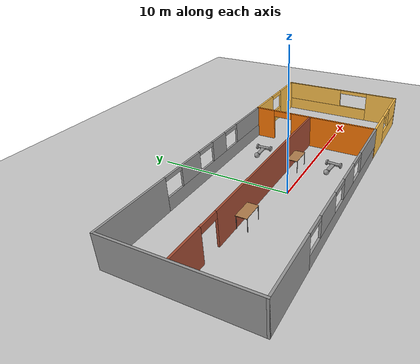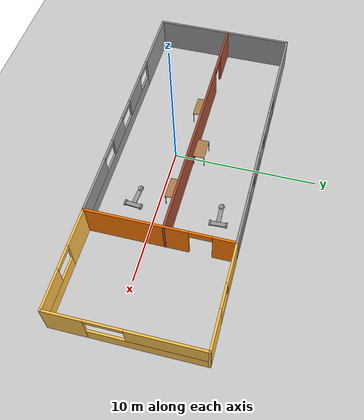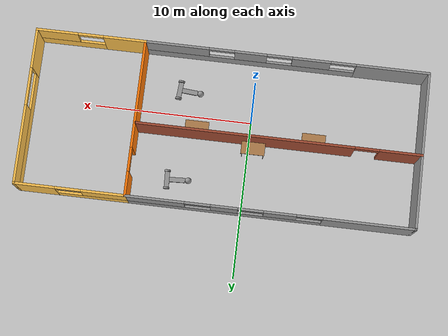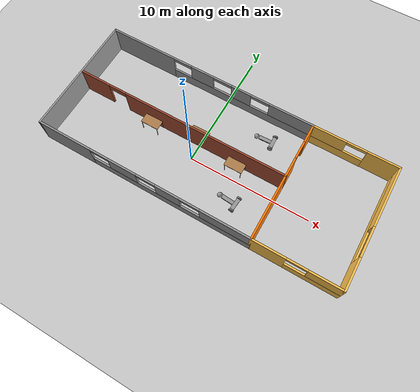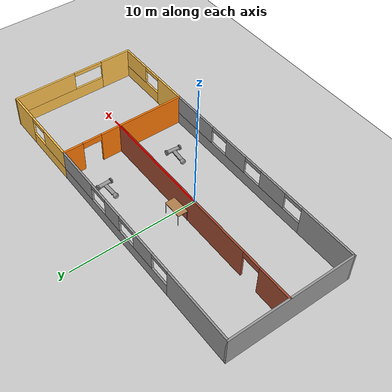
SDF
<sdf version="1.6">
 <world name="default">
  <plugin name="welcome_message" filename="libwelcome_message.so"/>
  <light name="sun" type="directional">
   <pose>0 0 10 0 -0 0</pose>
   <diffuse>0.8 0.8 0.8 1</diffuse>
   <specular>0.2 0.2 0.2 1</specular>
   <attenuation>
    <range>1000</range>
    <constant>0.9</constant>
    <linear>0.01</linear>
    <quadratic>0.001</quadratic>
   </attenuation>
   <direction>-0.5 0.1 -0.9</direction>
  </light>
  <model name="ground_plane">
   <static>1</static>
   <link name="link">
    <collision name="collision">
     <geometry><plane><normal>0 0 1</normal><size>100 100</size></plane></geometry>
     <surface><friction><ode><mu>100</mu><mu2>50</mu2></ode></friction></surface>
    </collision>
    <visual name="visual">
     <cast_shadows>0</cast_shadows>
     <geometry><plane><normal>0 0 1</normal><size>100 100</size></plane></geometry>
     <material>
      <script><uri>file://media/materials/scripts/gazebo.material</uri><name>Gazebo/Grey</name></script>
     </material>
    </visual>
   </link>
  </model>
  <gravity>0 0 -9.8</gravity>
  <magnetic_field>6e-06 2.3e-05 -4.2e-05</magnetic_field>
  <atmosphere type="adiabatic"/>
  <physics name="default_physics" default="0" type="ode">
   <max_step_size>0.001</max_step_size>
   <real_time_factor>1</real_time_factor>
   <real_time_update_rate>1000</real_time_update_rate>
  </physics>
  <scene><ambient>0.4 0.4 0.4 1</ambient><background>0.7 0.7 0.7 1</background><shadows>1</shadows></scene>
  <spherical_coordinates>
   <surface_model>EARTH_WGS84</surface_model>
   <latitude_deg>0</latitude_deg>
   <longitude_deg>0</longitude_deg>
   <elevation>0</elevation>
   <heading_deg>0</heading_deg>
  </spherical_coordinates>
  <model name="model">
   <pose>1.6444 1.00262 0 0 -0 0</pose>
   <link name="Wall_14">
    <collision name="Wall_14_Collision">
     <geometry><box><size>10 0.15 2.5</size></box></geometry>
     <pose>0 0 1.25 0 -0 0</pose>
    </collision>
    <visual name="Wall_14_Visual">
     <pose>0 0 1.25 0 -0 0</pose>
     <geometry><box><size>10 0.15 2.5</size></box></geometry>
     <material>
      <script><uri>file://media/materials/scripts/gazebo.material</uri><name>Gazebo/Grey</name></script>
      <ambient>1 1 1 1</ambient>
     </material>
     <meta><layer>0</layer></meta>
    </visual>
    <pose>-12.35 0 0 0 -0 1.5708</pose>
   </link>
   <link name="Wall_2">
    <pose>-3.425 -4.925 0 0 -0 0</pose>
    <visual name="Wall_2_Visual_0">
     <pose>-6.67972 0 1.25 0 -0 0</pose>
     <geometry><box><size>4.64056 0.15 2.5</size></box></geometry>
     <material>
      <script><uri>file://media/materials/scripts/gazebo.material</uri><name>Gazebo/Grey</name></script>
      <ambient>1 1 1 1</ambient>
     </material>
     <meta><layer>0</layer></meta>
    </visual>
    <collision name="Wall_2_Collision_0">
     <geometry><box><size>4.64056 0.15 2.5</size></box></geometry>
     <pose>-6.67972 0 1.25 0 -0 0</pose>
    </collision>
    <visual name="Wall_2_Visual_1">
     <pose>2.32028 0 0.5 0 -0 0</pose>
     <geometry><box><size>13.3594 0.15 1</size></box></geometry>
     <material>
      <script><uri>file://media/materials/scripts/gazebo.material</uri><name>Gazebo/Grey</name></script>
      <ambient>1 1 1 1</ambient>
     </material>
     <meta><layer>0</layer></meta>
    </visual>
    <collision name="Wall_2_Collision_1">
     <geometry><box><size>13.3594 0.15 1</size></box></geometry>
     <pose>2.32028 0 0.5 0 -0 0</pose>
    </collision>
    <visual name="Wall_2_Visual_2">
     <pose>-1.55367 0 1.75 0 -0 0</pose>
     <geometry><box><size>2.41153 0.15 1.5</size></box></geometry>
     <material>
      <script><uri>file://media/materials/scripts/gazebo.material</uri><name>Gazebo/Grey</name></script>
      <ambient>1 1 1 1</ambient>
     </material>
     <meta><layer>0</layer></meta>
    </visual>
    <collision name="Wall_2_Collision_2">
     <geometry><box><size>2.41153 0.15 1.5</size></box></geometry>
     <pose>-1.55367 0 1.75 0 -0 0</pose>
    </collision>
    <visual name="Wall_2_Visual_3">
     <pose>2.27221 0 1.75 0 -0 0</pose>
     <geometry><box><size>2.04024 0.15 1.5</size></box></geometry>
     <material>
      <script><uri>file://media/materials/scripts/gazebo.material</uri><name>Gazebo/Grey</name></script>
      <ambient>1 1 1 1</ambient>
     </material>
     <meta><layer>0</layer></meta>
    </visual>
    <collision name="Wall_2_Collision_3">
     <geometry><box><size>2.04024 0.15 1.5</size></box></geometry>
     <pose>2.27221 0 1.75 0 -0 0</pose>
    </collision>
    <visual name="Wall_2_Visual_4">
     <pose>6.94616 0 1.75 0 -0 0</pose>
     <geometry><box><size>4.10767 0.15 1.5</size></box></geometry>
     <material>
      <script><uri>file://media/materials/scripts/gazebo.material</uri><name>Gazebo/Grey</name></script>
      <ambient>1 1 1 1</ambient>
     </material>
     <meta><layer>0</layer></meta>
    </visual>
    <collision name="Wall_2_Collision_4">
     <geometry><box><size>4.10767 0.15 1.5</size></box></geometry>
     <pose>6.94616 0 1.75 0 -0 0</pose>
    </collision>
    <visual name="Wall_2_Visual_5">
     <pose>-3.55944 0 2.35 0 -0 0</pose>
     <geometry><box><size>1.6 0.15 0.3</size></box></geometry>
     <material>
      <script><uri>file://media/materials/scripts/gazebo.material</uri><name>Gazebo/Grey</name></script>
      <ambient>1 1 1 1</ambient>
     </material>
     <meta><layer>0</layer></meta>
    </visual>
    <collision name="Wall_2_Collision_5">
     <geometry><box><size>1.6 0.15 0.3</size></box></geometry>
     <pose>-3.55944 0 2.35 0 -0 0</pose>
    </collision>
    <visual name="Wall_2_Visual_6">
     <pose>0.452091 0 2.35 0 -0 0</pose>
     <geometry><box><size>1.6 0.15 0.3</size></box></geometry>
     <material>
      <script><uri>file://media/materials/scripts/gazebo.material</uri><name>Gazebo/Grey</name></script>
      <ambient>1 1 1 1</ambient>
     </material>
     <meta><layer>0</layer></meta>
    </visual>
    <collision name="Wall_2_Collision_6">
     <geometry><box><size>1.6 0.15 0.3</size></box></geometry>
     <pose>0.452091 0 2.35 0 -0 0</pose>
    </collision>
    <visual name="Wall_2_Visual_7">
     <pose>4.09233 0 2.35 0 -0 0</pose>
     <geometry><box><size>1.6 0.15 0.3</size></box></geometry>
     <material>
      <script><uri>file://media/materials/scripts/gazebo.material</uri><name>Gazebo/Grey</name></script>
      <ambient>1 1 1 1</ambient>
     </material>
     <meta><layer>0</layer></meta>
    </visual>
    <collision name="Wall_2_Collision_7">
     <geometry><box><size>1.6 0.15 0.3</size></box></geometry>
     <pose>4.09233 0 2.35 0 -0 0</pose>
    </collision>
   </link>
   <link name="Wall_21">
    <pose>-3.425 4.925 0 0 -0 0</pose>
    <visual name="Wall_21_Visual_0">
     <pose>-6.12354 0 1.25 0 -0 0</pose>
     <geometry><box><size>5.75291 0.15 2.5</size></box></geometry>
     <material>
      <script><uri>file://media/materials/scripts/gazebo.material</uri><name>Gazebo/Grey</name></script>
      <ambient>1 1 1 1</ambient>
     </material>
     <meta><layer>0</layer></meta>
    </visual>
    <collision name="Wall_21_Collision_0">
     <geometry><box><size>5.75291 0.15 2.5</size></box></geometry>
     <pose>-6.12354 0 1.25 0 -0 0</pose>
    </collision>
    <visual name="Wall_21_Visual_1">
     <pose>2.87646 0 0.5 0 -0 0</pose>
     <geometry><box><size>12.2471 0.15 1</size></box></geometry>
     <material>
      <script><uri>file://media/materials/scripts/gazebo.material</uri><name>Gazebo/Grey</name></script>
      <ambient>1 1 1 1</ambient>
     </material>
     <meta><layer>0</layer></meta>
    </visual>
    <collision name="Wall_21_Collision_1">
     <geometry><box><size>12.2471 0.15 1</size></box></geometry>
     <pose>2.87646 0 0.5 0 -0 0</pose>
    </collision>
    <visual name="Wall_21_Visual_2">
     <pose>-0.636863 0 1.75 0 -0 0</pose>
     <geometry><box><size>2.02044 0.15 1.5</size></box></geometry>
     <material>
      <script><uri>file://media/materials/scripts/gazebo.material</uri><name>Gazebo/Grey</name></script>
      <ambient>1 1 1 1</ambient>
     </material>
     <meta><layer>0</layer></meta>
    </visual>
    <collision name="Wall_21_Collision_2">
     <geometry><box><size>2.02044 0.15 1.5</size></box></geometry>
     <pose>-0.636863 0 1.75 0 -0 0</pose>
    </collision>
    <visual name="Wall_21_Visual_3">
     <pose>2.81953 0 1.75 0 -0 0</pose>
     <geometry><box><size>1.69234 0.15 1.5</size></box></geometry>
     <material>
      <script><uri>file://media/materials/scripts/gazebo.material</uri><name>Gazebo/Grey</name></script>
      <ambient>1 1 1 1</ambient>
     </material>
     <meta><layer>0</layer></meta>
    </visual>
    <collision name="Wall_21_Collision_3">
     <geometry><box><size>1.69234 0.15 1.5</size></box></geometry>
     <pose>2.81953 0 1.75 0 -0 0</pose>
    </collision>
    <visual name="Wall_21_Visual_4">
     <pose>7.13285 0 1.75 0 -0 0</pose>
     <geometry><box><size>3.7343 0.15 1.5</size></box></geometry>
     <material>
      <script><uri>file://media/materials/scripts/gazebo.material</uri><name>Gazebo/Grey</name></script>
      <ambient>1 1 1 1</ambient>
     </material>
     <meta><layer>0</layer></meta>
    </visual>
    <collision name="Wall_21_Collision_4">
     <geometry><box><size>3.7343 0.15 1.5</size></box></geometry>
     <pose>7.13285 0 1.75 0 -0 0</pose>
    </collision>
    <visual name="Wall_21_Visual_5">
     <pose>-2.44708 0 2.35 0 -0 0</pose>
     <geometry><box><size>1.6 0.15 0.3</size></box></geometry>
     <material>
      <script><uri>file://media/materials/scripts/gazebo.material</uri><name>Gazebo/Grey</name></script>
      <ambient>1 1 1 1</ambient>
     </material>
     <meta><layer>0</layer></meta>
    </visual>
    <collision name="Wall_21_Collision_5">
     <geometry><box><size>1.6 0.15 0.3</size></box></geometry>
     <pose>-2.44708 0 2.35 0 -0 0</pose>
    </collision>
    <visual name="Wall_21_Visual_6">
     <pose>1.17336 0 2.35 0 -0 0</pose>
     <geometry><box><size>1.6 0.15 0.3</size></box></geometry>
     <material>
      <script><uri>file://media/materials/scripts/gazebo.material</uri><name>Gazebo/Grey</name></script>
      <ambient>1 1 1 1</ambient>
     </material>
     <meta><layer>0</layer></meta>
    </visual>
    <collision name="Wall_21_Collision_6">
     <geometry><box><size>1.6 0.15 0.3</size></box></geometry>
     <pose>1.17336 0 2.35 0 -0 0</pose>
    </collision>
    <visual name="Wall_21_Visual_7">
     <pose>4.4657 0 2.35 0 -0 0</pose>
     <geometry><box><size>1.6 0.15 0.3</size></box></geometry>
     <material>
      <script><uri>file://media/materials/scripts/gazebo.material</uri><name>Gazebo/Grey</name></script>
      <ambient>1 1 1 1</ambient>
     </material>
     <meta><layer>0</layer></meta>
    </visual>
    <collision name="Wall_21_Collision_7">
     <geometry><box><size>1.6 0.15 0.3</size></box></geometry>
     <pose>4.4657 0 2.35 0 -0 0</pose>
    </collision>
   </link>
   <link name="Wall_23">
    <pose>5.5 0 0 0 -0 -1.5708</pose>
    <visual name="Wall_23_Visual_0">
     <pose>-4.19626 0 1.25 0 -0 0</pose>
     <geometry><box><size>1.60748 0.15 2.5</size></box></geometry>
     <material>
      <script><uri>file://media/materials/scripts/gazebo.material</uri><name>Gazebo/Grey</name></script>
      <ambient>0.996078 0.47451 0.0196078 1</ambient>
     </material>
     <meta><layer>0</layer></meta>
    </visual>
    <collision name="Wall_23_Collision_0">
     <geometry><box><size>1.60748 0.15 2.5</size></box></geometry>
     <pose>-4.19626 0 1.25 0 -0 0</pose>
    </collision>
    <visual name="Wall_23_Visual_1">
     <pose>1.55374 0 1.25 0 -0 0</pose>
     <geometry><box><size>6.89252 0.15 2.5</size></box></geometry>
     <material>
      <script><uri>file://media/materials/scripts/gazebo.material</uri><name>Gazebo/Grey</name></script>
      <ambient>0.996078 0.47451 0.0196078 1</ambient>
     </material>
     <meta><layer>0</layer></meta>
    </visual>
    <collision name="Wall_23_Collision_1">
     <geometry><box><size>6.89252 0.15 2.5</size></box></geometry>
     <pose>1.55374 0 1.25 0 -0 0</pose>
    </collision>
    <visual name="Wall_23_Visual_2">
     <pose>-2.64252 0 2.25 0 -0 0</pose>
     <geometry><box><size>1.5 0.15 0.5</size></box></geometry>
     <material>
      <script><uri>file://media/materials/scripts/gazebo.material</uri><name>Gazebo/Grey</name></script>
      <ambient>0.996078 0.47451 0.0196078 1</ambient>
     </material>
     <meta><layer>0</layer></meta>
    </visual>
    <collision name="Wall_23_Collision_2">
     <geometry><box><size>1.5 0.15 0.5</size></box></geometry>
     <pose>-2.64252 0 2.25 0 -0 0</pose>
    </collision>
   </link>
   <link name="Wall_24">
    <pose>8.925 -4.925 0 0 -0 0</pose>
    <visual name="Wall_24_Visual_0">
     <pose>-2.13386 0 1.25 0 -0 0</pose>
     <geometry><box><size>2.73228 0.15 2.5</size></box></geometry>
     <material>
      <script><uri>file://media/materials/scripts/gazebo.material</uri><name>Gazebo/Grey</name></script>
      <ambient>1 0.764706 0.305882 1</ambient>
     </material>
     <meta><layer>0</layer></meta>
    </visual>
    <collision name="Wall_24_Collision_0">
     <geometry><box><size>2.73228 0.15 2.5</size></box></geometry>
     <pose>-2.13386 0 1.25 0 -0 0</pose>
    </collision>
    <visual name="Wall_24_Visual_1">
     <pose>1.36614 0 0.5 0 -0 0</pose>
     <geometry><box><size>4.26772 0.15 1</size></box></geometry>
     <material>
      <script><uri>file://media/materials/scripts/gazebo.material</uri><name>Gazebo/Grey</name></script>
      <ambient>1 0.764706 0.305882 1</ambient>
     </material>
     <meta><layer>0</layer></meta>
    </visual>
    <collision name="Wall_24_Collision_1">
     <geometry><box><size>4.26772 0.15 1</size></box></geometry>
     <pose>1.36614 0 0.5 0 -0 0</pose>
    </collision>
    <visual name="Wall_24_Visual_2">
     <pose>2.16614 0 1.75 0 -0 0</pose>
     <geometry><box><size>2.66772 0.15 1.5</size></box></geometry>
     <material>
      <script><uri>file://media/materials/scripts/gazebo.material</uri><name>Gazebo/Grey</name></script>
      <ambient>1 0.764706 0.305882 1</ambient>
     </material>
     <meta><layer>0</layer></meta>
    </visual>
    <collision name="Wall_24_Collision_2">
     <geometry><box><size>2.66772 0.15 1.5</size></box></geometry>
     <pose>2.16614 0 1.75 0 -0 0</pose>
    </collision>
    <visual name="Wall_24_Visual_3">
     <pose>0.032279 0 2.35 0 -0 0</pose>
     <geometry><box><size>1.6 0.15 0.3</size></box></geometry>
     <material>
      <script><uri>file://media/materials/scripts/gazebo.material</uri><name>Gazebo/Grey</name></script>
      <ambient>1 0.764706 0.305882 1</ambient>
     </material>
     <meta><layer>0</layer></meta>
    </visual>
    <collision name="Wall_24_Collision_3">
     <geometry><box><size>1.6 0.15 0.3</size></box></geometry>
     <pose>0.032279 0 2.35 0 -0 0</pose>
    </collision>
   </link>
   <link name="Wall_25">
    <pose>12.35 0 0 0 -0 1.5708</pose>
    <visual name="Wall_25_Visual_0">
     <pose>-3.70668 0 1.25 0 -0 0</pose>
     <geometry><box><size>2.58664 0.15 2.5</size></box></geometry>
     <material>
      <script><uri>file://media/materials/scripts/gazebo.material</uri><name>Gazebo/Grey</name></script>
      <ambient>1 0.764706 0.305882 1</ambient>
     </material>
     <meta><layer>0</layer></meta>
    </visual>
    <collision name="Wall_25_Collision_0">
     <geometry><box><size>2.58664 0.15 2.5</size></box></geometry>
     <pose>-3.70668 0 1.25 0 -0 0</pose>
    </collision>
    <visual name="Wall_25_Visual_1">
     <pose>1.29332 0 0.5 0 -0 0</pose>
     <geometry><box><size>7.41336 0.15 1</size></box></geometry>
     <material>
      <script><uri>file://media/materials/scripts/gazebo.material</uri><name>Gazebo/Grey</name></script>
      <ambient>1 0.764706 0.305882 1</ambient>
     </material>
     <meta><layer>0</layer></meta>
    </visual>
    <collision name="Wall_25_Collision_1">
     <geometry><box><size>7.41336 0.15 1</size></box></geometry>
     <pose>1.29332 0 0.5 0 -0 0</pose>
    </collision>
    <visual name="Wall_25_Visual_2">
     <pose>2.49332 0 1.75 0 -0 0</pose>
     <geometry><box><size>5.01336 0.15 1.5</size></box></geometry>
     <material>
      <script><uri>file://media/materials/scripts/gazebo.material</uri><name>Gazebo/Grey</name></script>
      <ambient>1 0.764706 0.305882 1</ambient>
     </material>
     <meta><layer>0</layer></meta>
    </visual>
    <collision name="Wall_25_Collision_2">
     <geometry><box><size>5.01336 0.15 1.5</size></box></geometry>
     <pose>2.49332 0 1.75 0 -0 0</pose>
    </collision>
    <visual name="Wall_25_Visual_3">
     <pose>-1.21336 0 2.35 0 -0 0</pose>
     <geometry><box><size>2.4 0.15 0.3</size></box></geometry>
     <material>
      <script><uri>file://media/materials/scripts/gazebo.material</uri><name>Gazebo/Grey</name></script>
      <ambient>1 0.764706 0.305882 1</ambient>
     </material>
     <meta><layer>0</layer></meta>
    </visual>
    <collision name="Wall_25_Collision_3">
     <geometry><box><size>2.4 0.15 0.3</size></box></geometry>
     <pose>-1.21336 0 2.35 0 -0 0</pose>
    </collision>
   </link>
   <link name="Wall_26">
    <pose>8.925 4.925 0 0 -0 3.14159</pose>
    <visual name="Wall_26_Visual_0">
     <pose>-2.19673 0 1.25 0 -0 0</pose>
     <geometry><box><size>2.60654 0.15 2.5</size></box></geometry>
     <material>
      <script><uri>file://media/materials/scripts/gazebo.material</uri><name>Gazebo/Grey</name></script>
      <ambient>1 0.764706 0.305882 1</ambient>
     </material>
     <meta><layer>0</layer></meta>
    </visual>
    <collision name="Wall_26_Collision_0">
     <geometry><box><size>2.60654 0.15 2.5</size></box></geometry>
     <pose>-2.19673 0 1.25 0 -0 0</pose>
    </collision>
    <visual name="Wall_26_Visual_1">
     <pose>1.30327 0 0.5 0 -0 0</pose>
     <geometry><box><size>4.39346 0.15 1</size></box></geometry>
     <material>
      <script><uri>file://media/materials/scripts/gazebo.material</uri><name>Gazebo/Grey</name></script>
      <ambient>1 0.764706 0.305882 1</ambient>
     </material>
     <meta><layer>0</layer></meta>
    </visual>
    <collision name="Wall_26_Collision_1">
     <geometry><box><size>4.39346 0.15 1</size></box></geometry>
     <pose>1.30327 0 0.5 0 -0 0</pose>
    </collision>
    <visual name="Wall_26_Visual_2">
     <pose>2.10327 0 1.75 0 -0 0</pose>
     <geometry><box><size>2.79346 0.15 1.5</size></box></geometry>
     <material>
      <script><uri>file://media/materials/scripts/gazebo.material</uri><name>Gazebo/Grey</name></script>
      <ambient>1 0.764706 0.305882 1</ambient>
     </material>
     <meta><layer>0</layer></meta>
    </visual>
    <collision name="Wall_26_Collision_2">
     <geometry><box><size>2.79346 0.15 1.5</size></box></geometry>
     <pose>2.10327 0 1.75 0 -0 0</pose>
    </collision>
    <visual name="Wall_26_Visual_3">
     <pose>-0.09346 0 2.35 0 -0 0</pose>
     <geometry><box><size>1.6 0.15 0.3</size></box></geometry>
     <material>
      <script><uri>file://media/materials/scripts/gazebo.material</uri><name>Gazebo/Grey</name></script>
      <ambient>1 0.764706 0.305882 1</ambient>
     </material>
     <meta><layer>0</layer></meta>
    </visual>
    <collision name="Wall_26_Collision_3">
     <geometry><box><size>1.6 0.15 0.3</size></box></geometry>
     <pose>-0.09346 0 2.35 0 -0 0</pose>
    </collision>
   </link>
   <link name="Wall_28">
    <pose>-3.41699 0.307878 0 0 -0 0</pose>
    <visual name="Wall_28_Visual_0">
     <pose>-7.64433 0 1.25 0 -0 0</pose>
     <geometry><box><size>2.71133 0.15 2.5</size></box></geometry>
     <material>
      <script><uri>file://media/materials/scripts/gazebo.material</uri><name>Gazebo/Bricks</name></script>
      <ambient>0.996078 0.47451 0.0196078 1</ambient>
     </material>
     <meta><layer>0</layer></meta>
    </visual>
    <collision name="Wall_28_Collision_0">
     <geometry><box><size>2.71133 0.15 2.5</size></box></geometry>
     <pose>-7.64433 0 1.25 0 -0 0</pose>
    </collision>
    <visual name="Wall_28_Visual_1">
     <pose>2.10567 0 1.25 0 -0 0</pose>
     <geometry><box><size>13.7887 0.15 2.5</size></box></geometry>
     <material>
      <script><uri>file://media/materials/scripts/gazebo.material</uri><name>Gazebo/Bricks</name></script>
      <ambient>0.996078 0.47451 0.0196078 1</ambient>
     </material>
     <meta><layer>0</layer></meta>
    </visual>
    <collision name="Wall_28_Collision_1">
     <geometry><box><size>13.7887 0.15 2.5</size></box></geometry>
     <pose>2.10567 0 1.25 0 -0 0</pose>
    </collision>
    <visual name="Wall_28_Visual_2">
     <pose>-5.53867 0 2.25 0 -0 0</pose>
     <geometry><box><size>1.5 0.15 0.5</size></box></geometry>
     <material>
      <script><uri>file://media/materials/scripts/gazebo.material</uri><name>Gazebo/Bricks</name></script>
      <ambient>0.996078 0.47451 0.0196078 1</ambient>
     </material>
     <meta><layer>0</layer></meta>
    </visual>
    <collision name="Wall_28_Collision_2">
     <geometry><box><size>1.5 0.15 0.5</size></box></geometry>
     <pose>-5.53867 0 2.25 0 -0 0</pose>
    </collision>
   </link>
   <static>1</static>
  </model>
  <model name="model_0">
   <link name="link_0">
    <inertial>
     <mass>1</mass>
     <inertia>
      <ixx>0.166667</ixx>
      <ixy>0</ixy>
      <ixz>0</ixz>
      <iyy>0.166667</iyy>
      <iyz>0</iyz>
      <izz>0.166667</izz>
     </inertia>
    </inertial>
    <pose>0.400009 0 0 0 -0 0</pose>
    <visual name="visual">
     <geometry><box><size>0.3 1 0.1</size></box></geometry>
     <material>
      <lighting>1</lighting>
      <script><uri>file://media/materials/scripts/gazebo.material</uri><name>Gazebo/Grey</name></script>
      <shader type="pixel"><normal_map>__default__</normal_map></shader>
      <ambient>0.3 0.3 0.3 1</ambient>
      <diffuse>0.7 0.7 0.7 1</diffuse>
      <specular>0.01 0.01 0.01 1</specular>
      <emissive>0 0 0 1</emissive>
     </material>
    </visual>
    <collision name="collision">
     <geometry><box><size>0.3 1 0.1</size></box></geometry>
     <surface>
      <friction>
       <ode><mu>1</mu><mu2>1</mu2><fdir1>0 0 0</fdir1><slip1>0</slip1><slip2>0</slip2></ode>
       <torsional>
        <coefficient>1</coefficient>
        <patch_radius>0</patch_radius>
        <surface_radius>0</surface_radius>
        <use_patch_radius>1</use_patch_radius>
        <ode><slip>0</slip></ode>
       </torsional>
      </friction>
      <bounce><restitution_coefficient>0</restitution_coefficient><threshold>1e+06</threshold></bounce>
      <contact>
       <collide_without_contact>0</collide_without_contact>
       <collide_without_contact_bitmask>1</collide_without_contact_bitmask>
       <collide_bitmask>1</collide_bitmask>
       <ode>
        <soft_cfm>0</soft_cfm>
        <soft_erp>0.2</soft_erp>
        <kp>1e+13</kp>
        <kd>1</kd>
        <max_vel>0.01</max_vel>
        <min_depth>0</min_depth>
       </ode>
       <bullet>
        <split_impulse>1</split_impulse>
        <split_impulse_penetration_threshold>-0.01</split_impulse_penetration_threshold>
        <soft_cfm>0</soft_cfm>
        <soft_erp>0.2</soft_erp>
        <kp>1e+13</kp>
        <kd>1</kd>
       </bullet>
      </contact>
     </surface>
    </collision>
   </link>
   <link name="link_1">
    <inertial>
     <mass>1</mass>
     <inertia><ixx>0.145833</ixx><ixy>0</ixy><ixz>0</ixz><iyy>0.145833</iyy><iyz>0</iyz><izz>0.125</izz></inertia>
    </inertial>
    <pose>0.400009 -0.550019 0 1.5707 -0 0</pose>
    <visual name="visual">
     <geometry><cylinder><radius>0.2</radius><length>0.1</length></cylinder></geometry>
     <material>
      <lighting>1</lighting>
      <script><uri>file://media/materials/scripts/gazebo.material</uri><name>Gazebo/Grey</name></script>
      <shader type="pixel"><normal_map>__default__</normal_map></shader>
      <ambient>0.3 0.3 0.3 1</ambient>
      <diffuse>0.7 0.7 0.7 1</diffuse>
      <specular>0.01 0.01 0.01 1</specular>
      <emissive>0 0 0 1</emissive>
     </material>
    </visual>
    <collision name="collision">
     <geometry><cylinder><radius>0.2</radius><length>0.1</length></cylinder></geometry>
     <surface>
      <friction>
       <ode><mu>1</mu><mu2>1</mu2><fdir1>0 0 0</fdir1><slip1>0</slip1><slip2>0</slip2></ode>
       <torsional>
        <coefficient>1</coefficient>
        <patch_radius>0</patch_radius>
        <surface_radius>0</surface_radius>
        <use_patch_radius>1</use_patch_radius>
        <ode><slip>0</slip></ode>
       </torsional>
      </friction>
      <bounce><restitution_coefficient>0</restitution_coefficient><threshold>1e+06</threshold></bounce>
      <contact>
       <collide_without_contact>0</collide_without_contact>
       <collide_without_contact_bitmask>1</collide_without_contact_bitmask>
       <collide_bitmask>1</collide_bitmask>
       <ode>
        <soft_cfm>0</soft_cfm>
        <soft_erp>0.2</soft_erp>
        <kp>1e+13</kp>
        <kd>1</kd>
        <max_vel>0.01</max_vel>
        <min_depth>0</min_depth>
       </ode>
       <bullet>
        <split_impulse>1</split_impulse>
        <split_impulse_penetration_threshold>-0.01</split_impulse_penetration_threshold>
        <soft_cfm>0</soft_cfm>
        <soft_erp>0.2</soft_erp>
        <kp>1e+13</kp>
        <kd>1</kd>
       </bullet>
      </contact>
     </surface>
    </collision>
   </link>
   <link name="link_1_clone">
    <inertial>
     <mass>1</mass>
     <inertia><ixx>0.145833</ixx><ixy>0</ixy><ixz>0</ixz><iyy>0.145833</iyy><iyz>0</iyz><izz>0.125</izz></inertia>
    </inertial>
    <pose>0.400009 0.550019 0 1.5707 -0 0</pose>
    <visual name="visual">
     <geometry><cylinder><radius>0.2</radius><length>0.1</length></cylinder></geometry>
     <material>
      <lighting>1</lighting>
      <script><uri>file://media/materials/scripts/gazebo.material</uri><name>Gazebo/Grey</name></script>
      <shader type="pixel"><normal_map>__default__</normal_map></shader>
      <ambient>0.3 0.3 0.3 1</ambient>
      <diffuse>0.7 0.7 0.7 1</diffuse>
      <specular>0.01 0.01 0.01 1</specular>
      <emissive>0 0 0 1</emissive>
     </material>
    </visual>
    <collision name="collision">
     <geometry><cylinder><radius>0.2</radius><length>0.1</length></cylinder></geometry>
     <surface>
      <friction>
       <ode><mu>1</mu><mu2>1</mu2><fdir1>0 0 0</fdir1><slip1>0</slip1><slip2>0</slip2></ode>
       <torsional>
        <coefficient>1</coefficient>
        <patch_radius>0</patch_radius>
        <surface_radius>0</surface_radius>
        <use_patch_radius>1</use_patch_radius>
        <ode><slip>0</slip></ode>
       </torsional>
      </friction>
      <bounce><restitution_coefficient>0</restitution_coefficient><threshold>1e+06</threshold></bounce>
      <contact>
       <collide_without_contact>0</collide_without_contact>
       <collide_without_contact_bitmask>1</collide_without_contact_bitmask>
       <collide_bitmask>1</collide_bitmask>
       <ode>
        <soft_cfm>0</soft_cfm>
        <soft_erp>0.2</soft_erp>
        <kp>1e+13</kp>
        <kd>1</kd>
        <max_vel>0.01</max_vel>
        <min_depth>0</min_depth>
       </ode>
       <bullet>
        <split_impulse>1</split_impulse>
        <split_impulse_penetration_threshold>-0.01</split_impulse_penetration_threshold>
        <soft_cfm>0</soft_cfm>
        <soft_erp>0.2</soft_erp>
        <kp>1e+13</kp>
        <kd>1</kd>
       </bullet>
      </contact>
     </surface>
    </collision>
   </link>
   <link name="link_3">
    <inertial>
     <mass>1</mass>
     <inertia>
      <ixx>0.166667</ixx>
      <ixy>0</ixy>
      <ixz>0</ixz>
      <iyy>0.166667</iyy>
      <iyz>0</iyz>
      <izz>0.166667</izz>
     </inertia>
    </inertial>
    <pose>-0.250005 0 0 0 -0 1.5707</pose>
    <visual name="visual">
     <geometry><box><size>0.3 1 0.1</size></box></geometry>
     <material>
      <lighting>1</lighting>
      <script><uri>file://media/materials/scripts/gazebo.material</uri><name>Gazebo/Grey</name></script>
      <shader type="pixel"><normal_map>__default__</normal_map></shader>
      <ambient>0.3 0.3 0.3 1</ambient>
      <diffuse>0.7 0.7 0.7 1</diffuse>
      <specular>0.01 0.01 0.01 1</specular>
      <emissive>0 0 0 1</emissive>
     </material>
    </visual>
    <collision name="collision">
     <geometry><box><size>0.3 1 0.1</size></box></geometry>
     <surface>
      <friction>
       <ode><mu>1</mu><mu2>1</mu2><fdir1>0 0 0</fdir1><slip1>0</slip1><slip2>0</slip2></ode>
       <torsional>
        <coefficient>1</coefficient>
        <patch_radius>0</patch_radius>
        <surface_radius>0</surface_radius>
        <use_patch_radius>1</use_patch_radius>
        <ode><slip>0</slip></ode>
       </torsional>
      </friction>
      <bounce><restitution_coefficient>0</restitution_coefficient><threshold>1e+06</threshold></bounce>
      <contact>
       <collide_without_contact>0</collide_without_contact>
       <collide_without_contact_bitmask>1</collide_without_contact_bitmask>
       <collide_bitmask>1</collide_bitmask>
       <ode>
        <soft_cfm>0</soft_cfm>
        <soft_erp>0.2</soft_erp>
        <kp>1e+13</kp>
        <kd>1</kd>
        <max_vel>0.01</max_vel>
        <min_depth>0</min_depth>
       </ode>
       <bullet>
        <split_impulse>1</split_impulse>
        <split_impulse_penetration_threshold>-0.01</split_impulse_penetration_threshold>
        <soft_cfm>0</soft_cfm>
        <soft_erp>0.2</soft_erp>
        <kp>1e+13</kp>
        <kd>1</kd>
       </bullet>
      </contact>
     </surface>
    </collision>
   </link>
   <link name="link_5">
    <inertial>
     <mass>1</mass>
     <inertia><ixx>0.1</ixx><ixy>0</ixy><ixz>0</ixz><iyy>0.1</iyy><iyz>0</iyz><izz>0.1</izz></inertia>
    </inertial>
    <pose>-0.95002 0 0 0 -0 0</pose>
    <visual name="visual">
     <geometry><sphere><radius>0.2</radius></sphere></geometry>
     <material>
      <lighting>1</lighting>
      <script><uri>file://media/materials/scripts/gazebo.material</uri><name>Gazebo/Grey</name></script>
      <shader type="pixel"><normal_map>__default__</normal_map></shader>
      <ambient>0.3 0.3 0.3 1</ambient>
      <diffuse>0.7 0.7 0.7 1</diffuse>
      <specular>0.01 0.01 0.01 1</specular>
      <emissive>0 0 0 1</emissive>
     </material>
    </visual>
    <collision name="collision">
     <geometry><sphere><radius>0.2</radius></sphere></geometry>
     <surface>
      <friction>
       <ode><mu>1</mu><mu2>1</mu2><fdir1>0 0 0</fdir1><slip1>0</slip1><slip2>0</slip2></ode>
       <torsional>
        <coefficient>1</coefficient>
        <patch_radius>0</patch_radius>
        <surface_radius>0</surface_radius>
        <use_patch_radius>1</use_patch_radius>
        <ode><slip>0</slip></ode>
       </torsional>
      </friction>
      <bounce><restitution_coefficient>0</restitution_coefficient><threshold>1e+06</threshold></bounce>
      <contact>
       <collide_without_contact>0</collide_without_contact>
       <collide_without_contact_bitmask>1</collide_without_contact_bitmask>
       <collide_bitmask>1</collide_bitmask>
       <ode>
        <soft_cfm>0</soft_cfm>
        <soft_erp>0.2</soft_erp>
        <kp>1e+13</kp>
        <kd>1</kd>
        <max_vel>0.01</max_vel>
        <min_depth>0</min_depth>
       </ode>
       <bullet>
        <split_impulse>1</split_impulse>
        <split_impulse_penetration_threshold>-0.01</split_impulse_penetration_threshold>
        <soft_cfm>0</soft_cfm>
        <soft_erp>0.2</soft_erp>
        <kp>1e+13</kp>
        <kd>1</kd>
       </bullet>
      </contact>
     </surface>
    </collision>
   </link>
   <joint name="link_0_JOINT_4" type="revolute">
    <parent>link_0</parent>
    <child>link_1_clone</child>
    <axis>
     <xyz>0 0 1</xyz>
     <use_parent_model_frame>0</use_parent_model_frame>
     <limit>
      <lower>-1.79769e+308</lower>
      <upper>1.79769e+308</upper>
      <effort>-1</effort>
      <velocity>-1</velocity>
     </limit>
     <dynamics>
      <spring_reference>0</spring_reference>
      <spring_stiffness>0</spring_stiffness>
      <damping>0</damping>
     </dynamics>
    </axis>
    <physics>
     <ode><limit><cfm>0</cfm><erp>0.2</erp></limit><suspension><cfm>0</cfm><erp>0.2</erp></suspension></ode>
    </physics>
   </joint>
   <joint name="link_0_JOINT_5" type="revolute">
    <parent>link_0</parent>
    <child>link_1</child>
    <axis>
     <xyz>0 0 1</xyz>
     <use_parent_model_frame>0</use_parent_model_frame>
     <limit>
      <lower>-1.79769e+308</lower>
      <upper>1.79769e+308</upper>
      <effort>-1</effort>
      <velocity>-1</velocity>
     </limit>
     <dynamics>
      <spring_reference>0</spring_reference>
      <spring_stiffness>0</spring_stiffness>
      <damping>0</damping>
     </dynamics>
    </axis>
    <physics>
     <ode><limit><cfm>0</cfm><erp>0.2</erp></limit><suspension><cfm>0</cfm><erp>0.2</erp></suspension></ode>
    </physics>
   </joint>
   <joint name="link_0_JOINT_6" type="fixed">
    <parent>link_0</parent>
    <child>link_3</child>
    <physics>
     <ode><limit><cfm>0</cfm><erp>0.2</erp></limit><suspension><cfm>0</cfm><erp>0.2</erp></suspension></ode>
    </physics>
   </joint>
   <joint name="link_3_JOINT_8" type="ball">
    <parent>link_3</parent>
    <child>link_5</child>
    <physics>
     <ode><limit><cfm>0</cfm><erp>0.2</erp></limit><suspension><cfm>0</cfm><erp>0.2</erp></suspension></ode>
    </physics>
   </joint>
   <static>0</static>
   <pose>4.46598 4.22165 0.200002 4e-06 -2e-06 0.046102</pose>
  </model>
  <model name="model_1">
   <link name="link_0">
    <inertial>
     <mass>1</mass>
     <inertia>
      <ixx>0.166667</ixx>
      <ixy>0</ixy>
      <ixz>0</ixz>
      <iyy>0.166667</iyy>
      <iyz>0</iyz>
      <izz>0.166667</izz>
     </inertia>
    </inertial>
    <pose>0.400009 0 0 0 -0 0</pose>
    <visual name="visual">
     <geometry><box><size>0.3 1 0.1</size></box></geometry>
     <material>
      <lighting>1</lighting>
      <script><uri>file://media/materials/scripts/gazebo.material</uri><name>Gazebo/Grey</name></script>
      <shader type="pixel"><normal_map>__default__</normal_map></shader>
      <ambient>0.3 0.3 0.3 1</ambient>
      <diffuse>0.7 0.7 0.7 1</diffuse>
      <specular>0.01 0.01 0.01 1</specular>
      <emissive>0 0 0 1</emissive>
     </material>
    </visual>
    <collision name="collision">
     <geometry><box><size>0.3 1 0.1</size></box></geometry>
     <surface>
      <friction>
       <ode><mu>1</mu><mu2>1</mu2><fdir1>0 0 0</fdir1><slip1>0</slip1><slip2>0</slip2></ode>
       <torsional>
        <coefficient>1</coefficient>
        <patch_radius>0</patch_radius>
        <surface_radius>0</surface_radius>
        <use_patch_radius>1</use_patch_radius>
        <ode><slip>0</slip></ode>
       </torsional>
      </friction>
      <bounce><restitution_coefficient>0</restitution_coefficient><threshold>1e+06</threshold></bounce>
      <contact>
       <collide_without_contact>0</collide_without_contact>
       <collide_without_contact_bitmask>1</collide_without_contact_bitmask>
       <collide_bitmask>1</collide_bitmask>
       <ode>
        <soft_cfm>0</soft_cfm>
        <soft_erp>0.2</soft_erp>
        <kp>1e+13</kp>
        <kd>1</kd>
        <max_vel>0.01</max_vel>
        <min_depth>0</min_depth>
       </ode>
       <bullet>
        <split_impulse>1</split_impulse>
        <split_impulse_penetration_threshold>-0.01</split_impulse_penetration_threshold>
        <soft_cfm>0</soft_cfm>
        <soft_erp>0.2</soft_erp>
        <kp>1e+13</kp>
        <kd>1</kd>
       </bullet>
      </contact>
     </surface>
    </collision>
   </link>
   <link name="link_1">
    <inertial>
     <mass>1</mass>
     <inertia><ixx>0.145833</ixx><ixy>0</ixy><ixz>0</ixz><iyy>0.145833</iyy><iyz>0</iyz><izz>0.125</izz></inertia>
    </inertial>
    <pose>0.400009 -0.550019 0 1.5707 -0 0</pose>
    <visual name="visual">
     <geometry><cylinder><radius>0.2</radius><length>0.1</length></cylinder></geometry>
     <material>
      <lighting>1</lighting>
      <script><uri>file://media/materials/scripts/gazebo.material</uri><name>Gazebo/Grey</name></script>
      <shader type="pixel"><normal_map>__default__</normal_map></shader>
      <ambient>0.3 0.3 0.3 1</ambient>
      <diffuse>0.7 0.7 0.7 1</diffuse>
      <specular>0.01 0.01 0.01 1</specular>
      <emissive>0 0 0 1</emissive>
     </material>
    </visual>
    <collision name="collision">
     <geometry><cylinder><radius>0.2</radius><length>0.1</length></cylinder></geometry>
     <surface>
      <friction>
       <ode><mu>1</mu><mu2>1</mu2><fdir1>0 0 0</fdir1><slip1>0</slip1><slip2>0</slip2></ode>
       <torsional>
        <coefficient>1</coefficient>
        <patch_radius>0</patch_radius>
        <surface_radius>0</surface_radius>
        <use_patch_radius>1</use_patch_radius>
        <ode><slip>0</slip></ode>
       </torsional>
      </friction>
      <bounce><restitution_coefficient>0</restitution_coefficient><threshold>1e+06</threshold></bounce>
      <contact>
       <collide_without_contact>0</collide_without_contact>
       <collide_without_contact_bitmask>1</collide_without_contact_bitmask>
       <collide_bitmask>1</collide_bitmask>
       <ode>
        <soft_cfm>0</soft_cfm>
        <soft_erp>0.2</soft_erp>
        <kp>1e+13</kp>
        <kd>1</kd>
        <max_vel>0.01</max_vel>
        <min_depth>0</min_depth>
       </ode>
       <bullet>
        <split_impulse>1</split_impulse>
        <split_impulse_penetration_threshold>-0.01</split_impulse_penetration_threshold>
        <soft_cfm>0</soft_cfm>
        <soft_erp>0.2</soft_erp>
        <kp>1e+13</kp>
        <kd>1</kd>
       </bullet>
      </contact>
     </surface>
    </collision>
   </link>
   <link name="link_1_clone">
    <inertial>
     <mass>1</mass>
     <inertia><ixx>0.145833</ixx><ixy>0</ixy><ixz>0</ixz><iyy>0.145833</iyy><iyz>0</iyz><izz>0.125</izz></inertia>
    </inertial>
    <pose>0.400009 0.550019 0 1.5707 -0 0</pose>
    <visual name="visual">
     <geometry><cylinder><radius>0.2</radius><length>0.1</length></cylinder></geometry>
     <material>
      <lighting>1</lighting>
      <script><uri>file://media/materials/scripts/gazebo.material</uri><name>Gazebo/Grey</name></script>
      <shader type="pixel"><normal_map>__default__</normal_map></shader>
      <ambient>0.3 0.3 0.3 1</ambient>
      <diffuse>0.7 0.7 0.7 1</diffuse>
      <specular>0.01 0.01 0.01 1</specular>
      <emissive>0 0 0 1</emissive>
     </material>
    </visual>
    <collision name="collision">
     <geometry><cylinder><radius>0.2</radius><length>0.1</length></cylinder></geometry>
     <surface>
      <friction>
       <ode><mu>1</mu><mu2>1</mu2><fdir1>0 0 0</fdir1><slip1>0</slip1><slip2>0</slip2></ode>
       <torsional>
        <coefficient>1</coefficient>
        <patch_radius>0</patch_radius>
        <surface_radius>0</surface_radius>
        <use_patch_radius>1</use_patch_radius>
        <ode><slip>0</slip></ode>
       </torsional>
      </friction>
      <bounce><restitution_coefficient>0</restitution_coefficient><threshold>1e+06</threshold></bounce>
      <contact>
       <collide_without_contact>0</collide_without_contact>
       <collide_without_contact_bitmask>1</collide_without_contact_bitmask>
       <collide_bitmask>1</collide_bitmask>
       <ode>
        <soft_cfm>0</soft_cfm>
        <soft_erp>0.2</soft_erp>
        <kp>1e+13</kp>
        <kd>1</kd>
        <max_vel>0.01</max_vel>
        <min_depth>0</min_depth>
       </ode>
       <bullet>
        <split_impulse>1</split_impulse>
        <split_impulse_penetration_threshold>-0.01</split_impulse_penetration_threshold>
        <soft_cfm>0</soft_cfm>
        <soft_erp>0.2</soft_erp>
        <kp>1e+13</kp>
        <kd>1</kd>
       </bullet>
      </contact>
     </surface>
    </collision>
   </link>
   <link name="link_3">
    <inertial>
     <mass>1</mass>
     <inertia>
      <ixx>0.166667</ixx>
      <ixy>0</ixy>
      <ixz>0</ixz>
      <iyy>0.166667</iyy>
      <iyz>0</iyz>
      <izz>0.166667</izz>
     </inertia>
    </inertial>
    <pose>-0.250005 0 0 0 -0 1.5707</pose>
    <visual name="visual">
     <geometry><box><size>0.3 1 0.1</size></box></geometry>
     <material>
      <lighting>1</lighting>
      <script><uri>file://media/materials/scripts/gazebo.material</uri><name>Gazebo/Grey</name></script>
      <shader type="pixel"><normal_map>__default__</normal_map></shader>
      <ambient>0.3 0.3 0.3 1</ambient>
      <diffuse>0.7 0.7 0.7 1</diffuse>
      <specular>0.01 0.01 0.01 1</specular>
      <emissive>0 0 0 1</emissive>
     </material>
    </visual>
    <collision name="collision">
     <geometry><box><size>0.3 1 0.1</size></box></geometry>
     <surface>
      <friction>
       <ode><mu>1</mu><mu2>1</mu2><fdir1>0 0 0</fdir1><slip1>0</slip1><slip2>0</slip2></ode>
       <torsional>
        <coefficient>1</coefficient>
        <patch_radius>0</patch_radius>
        <surface_radius>0</surface_radius>
        <use_patch_radius>1</use_patch_radius>
        <ode><slip>0</slip></ode>
       </torsional>
      </friction>
      <bounce><restitution_coefficient>0</restitution_coefficient><threshold>1e+06</threshold></bounce>
      <contact>
       <collide_without_contact>0</collide_without_contact>
       <collide_without_contact_bitmask>1</collide_without_contact_bitmask>
       <collide_bitmask>1</collide_bitmask>
       <ode>
        <soft_cfm>0</soft_cfm>
        <soft_erp>0.2</soft_erp>
        <kp>1e+13</kp>
        <kd>1</kd>
        <max_vel>0.01</max_vel>
        <min_depth>0</min_depth>
       </ode>
       <bullet>
        <split_impulse>1</split_impulse>
        <split_impulse_penetration_threshold>-0.01</split_impulse_penetration_threshold>
        <soft_cfm>0</soft_cfm>
        <soft_erp>0.2</soft_erp>
        <kp>1e+13</kp>
        <kd>1</kd>
       </bullet>
      </contact>
     </surface>
    </collision>
   </link>
   <link name="link_5">
    <inertial>
     <mass>1</mass>
     <inertia><ixx>0.1</ixx><ixy>0</ixy><ixz>0</ixz><iyy>0.1</iyy><iyz>0</iyz><izz>0.1</izz></inertia>
    </inertial>
    <pose>-0.95002 0 0 0 -0 0</pose>
    <visual name="visual">
     <geometry><sphere><radius>0.2</radius></sphere></geometry>
     <material>
      <lighting>1</lighting>
      <script><uri>file://media/materials/scripts/gazebo.material</uri><name>Gazebo/Grey</name></script>
      <shader type="pixel"><normal_map>__default__</normal_map></shader>
      <ambient>0.3 0.3 0.3 1</ambient>
      <diffuse>0.7 0.7 0.7 1</diffuse>
      <specular>0.01 0.01 0.01 1</specular>
      <emissive>0 0 0 1</emissive>
     </material>
    </visual>
    <collision name="collision">
     <geometry><sphere><radius>0.2</radius></sphere></geometry>
     <surface>
      <friction>
       <ode><mu>1</mu><mu2>1</mu2><fdir1>0 0 0</fdir1><slip1>0</slip1><slip2>0</slip2></ode>
       <torsional>
        <coefficient>1</coefficient>
        <patch_radius>0</patch_radius>
        <surface_radius>0</surface_radius>
        <use_patch_radius>1</use_patch_radius>
        <ode><slip>0</slip></ode>
       </torsional>
      </friction>
      <bounce><restitution_coefficient>0</restitution_coefficient><threshold>1e+06</threshold></bounce>
      <contact>
       <collide_without_contact>0</collide_without_contact>
       <collide_without_contact_bitmask>1</collide_without_contact_bitmask>
       <collide_bitmask>1</collide_bitmask>
       <ode>
        <soft_cfm>0</soft_cfm>
        <soft_erp>0.2</soft_erp>
        <kp>1e+13</kp>
        <kd>1</kd>
        <max_vel>0.01</max_vel>
        <min_depth>0</min_depth>
       </ode>
       <bullet>
        <split_impulse>1</split_impulse>
        <split_impulse_penetration_threshold>-0.01</split_impulse_penetration_threshold>
        <soft_cfm>0</soft_cfm>
        <soft_erp>0.2</soft_erp>
        <kp>1e+13</kp>
        <kd>1</kd>
       </bullet>
      </contact>
     </surface>
    </collision>
   </link>
   <joint name="link_0_JOINT_4" type="revolute">
    <parent>link_0</parent>
    <child>link_1_clone</child>
    <axis>
     <xyz>0 0 1</xyz>
     <use_parent_model_frame>0</use_parent_model_frame>
     <limit>
      <lower>-1.79769e+308</lower>
      <upper>1.79769e+308</upper>
      <effort>-1</effort>
      <velocity>-1</velocity>
     </limit>
     <dynamics>
      <spring_reference>0</spring_reference>
      <spring_stiffness>0</spring_stiffness>
      <damping>0</damping>
     </dynamics>
    </axis>
    <physics>
     <ode><limit><cfm>0</cfm><erp>0.2</erp></limit><suspension><cfm>0</cfm><erp>0.2</erp></suspension></ode>
    </physics>
   </joint>
   <joint name="link_0_JOINT_5" type="revolute">
    <parent>link_0</parent>
    <child>link_1</child>
    <axis>
     <xyz>0 0 1</xyz>
     <use_parent_model_frame>0</use_parent_model_frame>
     <limit>
      <lower>-1.79769e+308</lower>
      <upper>1.79769e+308</upper>
      <effort>-1</effort>
      <velocity>-1</velocity>
     </limit>
     <dynamics>
      <spring_reference>0</spring_reference>
      <spring_stiffness>0</spring_stiffness>
      <damping>0</damping>
     </dynamics>
    </axis>
    <physics>
     <ode><limit><cfm>0</cfm><erp>0.2</erp></limit><suspension><cfm>0</cfm><erp>0.2</erp></suspension></ode>
    </physics>
   </joint>
   <joint name="link_0_JOINT_6" type="fixed">
    <parent>link_0</parent>
    <child>link_3</child>
    <physics>
     <ode><limit><cfm>0</cfm><erp>0.2</erp></limit><suspension><cfm>0</cfm><erp>0.2</erp></suspension></ode>
    </physics>
   </joint>
   <joint name="link_3_JOINT_8" type="ball">
    <parent>link_3</parent>
    <child>link_5</child>
    <physics>
     <ode><limit><cfm>0</cfm><erp>0.2</erp></limit><suspension><cfm>0</cfm><erp>0.2</erp></suspension></ode>
    </physics>
   </joint>
   <static>0</static>
   <pose>4.35645 -1.60138 0.2 -0 -1.1e-05 -0.07876</pose>
  </model>
  <model name="table">
   <static>1</static>
   <link name="link">
    <collision name="surface">
     <pose>0 0 1 0 -0 0</pose>
     <geometry><box><size>1.5 0.8 0.03</size></box></geometry>
     <surface><friction><ode><mu>0.6</mu><mu2>0.6</mu2></ode></friction></surface>
    </collision>
    <visual name="visual1">
     <pose>0 0 1 0 -0 0</pose>
     <geometry><box><size>1.5 0.8 0.03</size></box></geometry>
     <material>
      <script><uri>file://media/materials/scripts/gazebo.material</uri><name>Gazebo/Wood</name></script>
     </material>
    </visual>
    <collision name="front_left_leg">
     <pose>0.68 0.38 0.5 0 -0 0</pose>
     <geometry><cylinder><radius>0.02</radius><length>1</length></cylinder></geometry>
    </collision>
    <visual name="front_left_leg">
     <pose>0.68 0.38 0.5 0 -0 0</pose>
     <geometry><cylinder><radius>0.02</radius><length>1</length></cylinder></geometry>
     <material>
      <script><uri>file://media/materials/scripts/gazebo.material</uri><name>Gazebo/Grey</name></script>
     </material>
    </visual>
    <collision name="front_right_leg">
     <pose>0.68 -0.38 0.5 0 -0 0</pose>
     <geometry><cylinder><radius>0.02</radius><length>1</length></cylinder></geometry>
    </collision>
    <visual name="front_right_leg">
     <pose>0.68 -0.38 0.5 0 -0 0</pose>
     <geometry><cylinder><radius>0.02</radius><length>1</length></cylinder></geometry>
     <material>
      <script><uri>file://media/materials/scripts/gazebo.material</uri><name>Gazebo/Grey</name></script>
     </material>
    </visual>
    <collision name="back_right_leg">
     <pose>-0.68 -0.38 0.5 0 -0 0</pose>
     <geometry><cylinder><radius>0.02</radius><length>1</length></cylinder></geometry>
    </collision>
    <visual name="back_right_leg">
     <pose>-0.68 -0.38 0.5 0 -0 0</pose>
     <geometry><cylinder><radius>0.02</radius><length>1</length></cylinder></geometry>
     <material>
      <script><uri>file://media/materials/scripts/gazebo.material</uri><name>Gazebo/Grey</name></script>
     </material>
    </visual>
    <collision name="back_left_leg">
     <pose>-0.68 0.38 0.5 0 -0 0</pose>
     <geometry><cylinder><radius>0.02</radius><length>1</length></cylinder></geometry>
    </collision>
    <visual name="back_left_leg">
     <pose>-0.68 0.38 0.5 0 -0 0</pose>
     <geometry><cylinder><radius>0.02</radius><length>1</length></cylinder></geometry>
     <material>
      <script><uri>file://media/materials/scripts/gazebo.material</uri><name>Gazebo/Grey</name></script>
     </material>
    </visual>
   </link>
   <pose>3.35321 0.831622 0 0 -0 0</pose>
  </model>
  <model name="table_1">
   <static>1</static>
   <link name="link">
    <collision name="surface">
     <pose>0 0 1 0 -0 0</pose>
     <geometry><box><size>1.5 0.8 0.03</size></box></geometry>
     <surface><friction><ode><mu>0.6</mu><mu2>0.6</mu2></ode></friction></surface>
    </collision>
    <visual name="visual1">
     <pose>0 0 1 0 -0 0</pose>
     <geometry><box><size>1.5 0.8 0.03</size></box></geometry>
     <material>
      <script><uri>file://media/materials/scripts/gazebo.material</uri><name>Gazebo/Wood</name></script>
     </material>
    </visual>
    <collision name="front_left_leg">
     <pose>0.68 0.38 0.5 0 -0 0</pose>
     <geometry><cylinder><radius>0.02</radius><length>1</length></cylinder></geometry>
    </collision>
    <visual name="front_left_leg">
     <pose>0.68 0.38 0.5 0 -0 0</pose>
     <geometry><cylinder><radius>0.02</radius><length>1</length></cylinder></geometry>
     <material>
      <script><uri>file://media/materials/scripts/gazebo.material</uri><name>Gazebo/Grey</name></script>
     </material>
    </visual>
    <collision name="front_right_leg">
     <pose>0.68 -0.38 0.5 0 -0 0</pose>
     <geometry><cylinder><radius>0.02</radius><length>1</length></cylinder></geometry>
    </collision>
    <visual name="front_right_leg">
     <pose>0.68 -0.38 0.5 0 -0 0</pose>
     <geometry><cylinder><radius>0.02</radius><length>1</length></cylinder></geometry>
     <material>
      <script><uri>file://media/materials/scripts/gazebo.material</uri><name>Gazebo/Grey</name></script>
     </material>
    </visual>
    <collision name="back_right_leg">
     <pose>-0.68 -0.38 0.5 0 -0 0</pose>
     <geometry><cylinder><radius>0.02</radius><length>1</length></cylinder></geometry>
    </collision>
    <visual name="back_right_leg">
     <pose>-0.68 -0.38 0.5 0 -0 0</pose>
     <geometry><cylinder><radius>0.02</radius><length>1</length></cylinder></geometry>
     <material>
      <script><uri>file://media/materials/scripts/gazebo.material</uri><name>Gazebo/Grey</name></script>
     </material>
    </visual>
    <collision name="back_left_leg">
     <pose>-0.68 0.38 0.5 0 -0 0</pose>
     <geometry><cylinder><radius>0.02</radius><length>1</length></cylinder></geometry>
    </collision>
    <visual name="back_left_leg">
     <pose>-0.68 0.38 0.5 0 -0 0</pose>
     <geometry><cylinder><radius>0.02</radius><length>1</length></cylinder></geometry>
     <material>
      <script><uri>file://media/materials/scripts/gazebo.material</uri><name>Gazebo/Grey</name></script>
     </material>
    </visual>
   </link>
   <pose>-4.0513 0.832565 0 0 -0 0</pose>
  </model>
  <model name="table_3">
   <static>1</static>
   <link name="link">
    <collision name="surface">
     <pose>0 0 1 0 -0 0</pose>
     <geometry><box><size>1.5 0.8 0.03</size></box></geometry>
     <surface><friction><ode><mu>0.6</mu><mu2>0.6</mu2></ode></friction></surface>
    </collision>
    <visual name="visual1">
     <pose>0 0 1 0 -0 0</pose>
     <geometry><box><size>1.5 0.8 0.03</size></box></geometry>
     <material>
      <script><uri>file://media/materials/scripts/gazebo.material</uri><name>Gazebo/Wood</name></script>
     </material>
    </visual>
    <collision name="front_left_leg">
     <pose>0.68 0.38 0.5 0 -0 0</pose>
     <geometry><cylinder><radius>0.02</radius><length>1</length></cylinder></geometry>
    </collision>
    <visual name="front_left_leg">
     <pose>0.68 0.38 0.5 0 -0 0</pose>
     <geometry><cylinder><radius>0.02</radius><length>1</length></cylinder></geometry>
     <material>
      <script><uri>file://media/materials/scripts/gazebo.material</uri><name>Gazebo/Grey</name></script>
     </material>
    </visual>
    <collision name="front_right_leg">
     <pose>0.68 -0.38 0.5 0 -0 0</pose>
     <geometry><cylinder><radius>0.02</radius><length>1</length></cylinder></geometry>
    </collision>
    <visual name="front_right_leg">
     <pose>0.68 -0.38 0.5 0 -0 0</pose>
     <geometry><cylinder><radius>0.02</radius><length>1</length></cylinder></geometry>
     <material>
      <script><uri>file://media/materials/scripts/gazebo.material</uri><name>Gazebo/Grey</name></script>
     </material>
    </visual>
    <collision name="back_right_leg">
     <pose>-0.68 -0.38 0.5 0 -0 0</pose>
     <geometry><cylinder><radius>0.02</radius><length>1</length></cylinder></geometry>
    </collision>
    <visual name="back_right_leg">
     <pose>-0.68 -0.38 0.5 0 -0 0</pose>
     <geometry><cylinder><radius>0.02</radius><length>1</length></cylinder></geometry>
     <material>
      <script><uri>file://media/materials/scripts/gazebo.material</uri><name>Gazebo/Grey</name></script>
     </material>
    </visual>
    <collision name="back_left_leg">
     <pose>-0.68 0.38 0.5 0 -0 0</pose>
     <geometry><cylinder><radius>0.02</radius><length>1</length></cylinder></geometry>
    </collision>
    <visual name="back_left_leg">
     <pose>-0.68 0.38 0.5 0 -0 0</pose>
     <geometry><cylinder><radius>0.02</radius><length>1</length></cylinder></geometry>
     <material>
      <script><uri>file://media/materials/scripts/gazebo.material</uri><name>Gazebo/Grey</name></script>
     </material>
    </visual>
   </link>
   <pose>-0.322368 1.79323 0 0 -0 0</pose>
  </model>
 </world>
</sdf>
